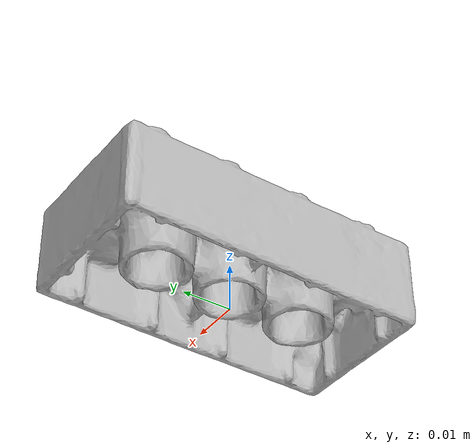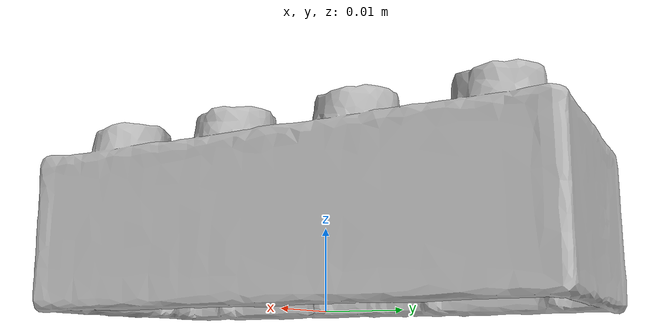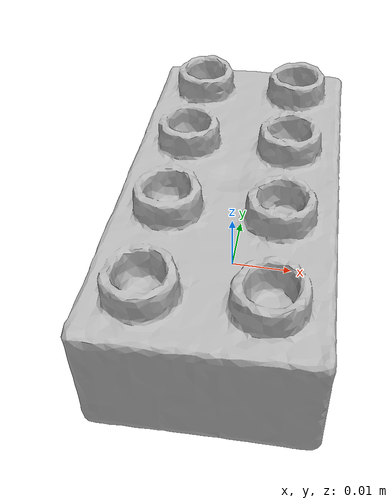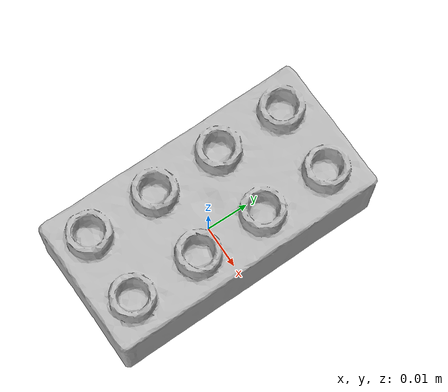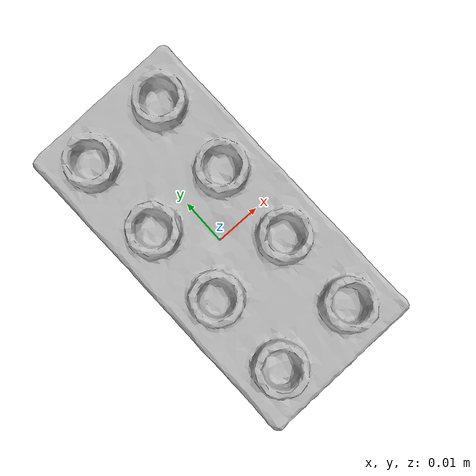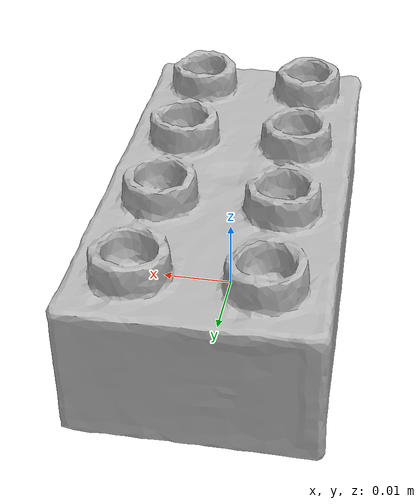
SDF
<?xml version="1.0" ?>
<sdf version='1.8'>
  <model name='ycb_073-c_lego_duplo'>
    <link name='body'>
      <inertial>
        <mass>0.032095600071</mass>
        <pose>8.76508621e-05 -0.000146898889 0.0129341196 0 0 0</pose>
        <inertia>
          <ixx>1.2373723439e-05</ixx>
          <ixy>2.66174367306e-07</ixy>
          <ixz>1.58415478809e-08</ixz>
          <iyy>3.82906172915e-06</iyy>
          <iyz>7.28354123257e-09</iyz>
          <izz>1.4600683498e-05</izz>
        </inertia>
      </inertial>
      <visual name='ycb_073-c_lego_duplo_visual'>
        <pose>0.013261 0.022704 0.000262 0 0 0</pose>
        <geometry>
          <mesh>
            <uri>model://ycb_073-c_lego_duplo/meshes/textured.dae</uri>
          </mesh>
        </geometry>
      </visual>
      <collision name='ycb_073-c_lego_duplo_collision'>
        <pose>0.013261 0.022704 0.000262 0 0 0</pose>
        <geometry>
          <mesh>
            <uri>model://ycb_073-c_lego_duplo/meshes/nontextured.stl</uri>
          </mesh>
        </geometry>
        <max_contacts>10</max_contacts>
        <surface>
          <contact>
            <ode>
              <kp>1e15</kp>
              <kd>1e13</kd>
            </ode>
          </contact>
        </surface>
      </collision>
    </link>
  </model>
</sdf>
